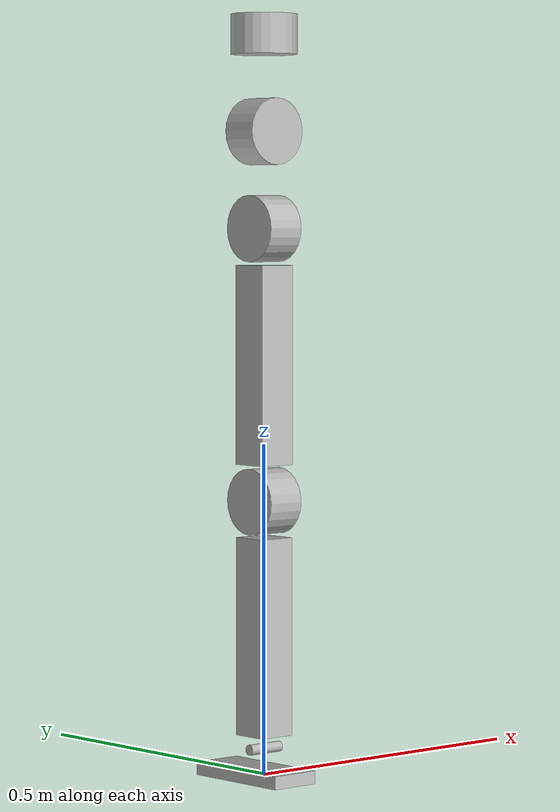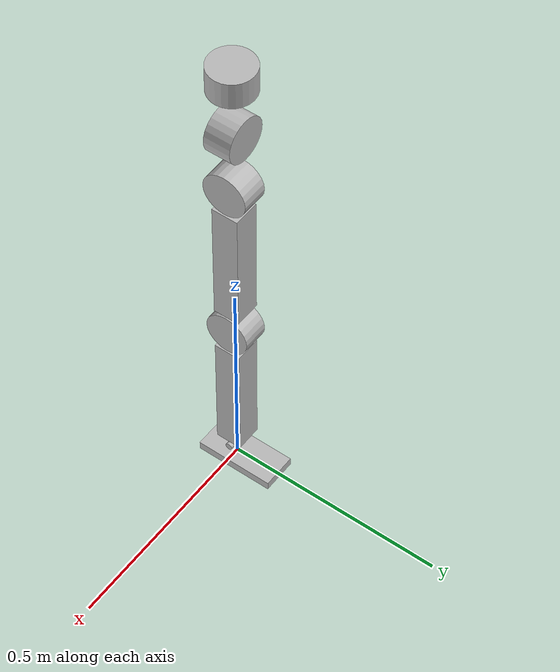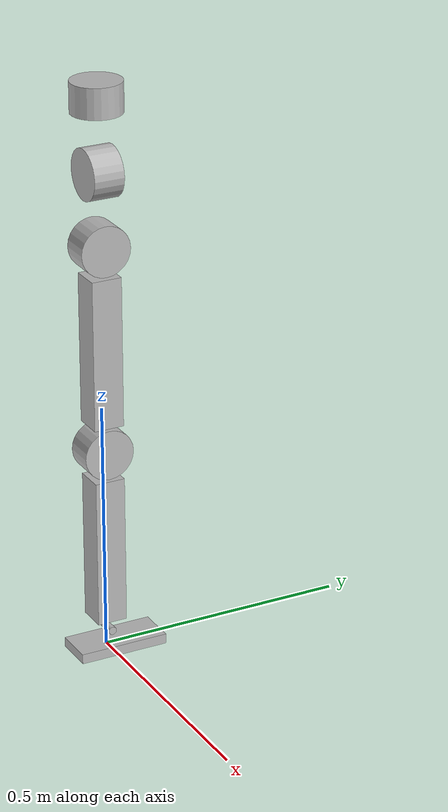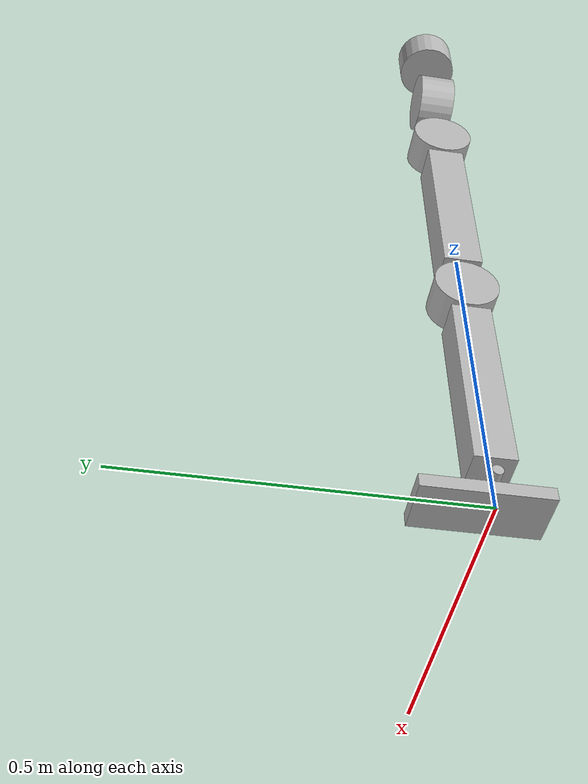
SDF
<?xml version="1.0" ?>
<sdf version="1.5">

<model name="simplified_biped">

    <link name="lower_leg">

        <self_collide>1</self_collide>

        <pose> 0 0 0.21 0 0 0 </pose>

            <inertial>
                <mass>0.5</mass>
                <inertia>
                    <ixx>0.0038</ixx>
                    <iyy>0.0038</iyy>
                    <izz>0.0003</izz>
                    <ixy>0</ixy>
                    <ixz>0</ixz>
                    <iyz>0</iyz>
                </inertia>
            </inertial>

            <collision name="base_collision">
                <geometry>
                    <box>
                        <size> 0.06 0.06 0.3 </size>
                    </box>
                </geometry>
            </collision>

            <visual name="base_visual">
                <geometry>
                    <box>
                        <size> 0.06 0.06 0.3 </size>
                    </box>
                </geometry>
            </visual>
    </link>

    <link name="knee">

        <self_collide>1</self_collide>
        <pose>0 0 0.415 0 1.570796 0</pose>

        <inertial>
            <mass>1</mass>
            <inertia>
                <ixx>0.0009</ixx>
                <iyy>0.0009</iyy>
                <izz>0.0012</izz>
                <ixy>0</ixy>
                <ixz>0</ixz>
                <iyz>0</iyz>
            </inertia>
        </inertial>

        <collision name="knee_collision">
            <geometry>
                <cylinder>
                    <radius>0.05</radius>
                    <length>0.06</length>
                </cylinder>
            </geometry>
        </collision>

        <visual name="knee_visual">
            <pose> 0 0 0 0 0 0</pose>
            <geometry>
                <cylinder>
                    <radius>0.05</radius>
                    <length>0.06</length>
                </cylinder>
            </geometry>
        </visual>
    </link>

    <link name="upper_leg">

        <self_collide>1</self_collide>
        <pose> 0 0 0.62 0 0 0 </pose>

        <inertial>
            <mass>0.5</mass>
            <inertia>
                <ixx>0.0038</ixx>
                <iyy>0.0038</iyy>
                <izz>0.0003</izz>
                <ixy>0</ixy>
                <ixz>0</ixz>
                <iyz>0</iyz>
            </inertia>
        </inertial>

        <!-- To make them perfectly stacked: 0.65m height-->

        <collision name="upper_leg_collision">
            <geometry>
                <box>
                    <size> 0.06 0.06 0.3 </size>
                </box>
            </geometry>
        </collision>

        <visual name="upper_leg_visual">
            <geometry>
                <box>
                    <size> 0.06 0.06 0.3 </size>
                </box>
            </geometry>
        </visual>
    </link>

    <link name="foot_base">

        <self_collide>1</self_collide>
        <pose>0 0.02 0 0 0 0</pose>

        <inertial>
            <mass>0.1</mass>
            <inertia>
                <ixx>0.0002</ixx>
                <iyy>0.00004</iyy>
                <izz>0.00023</izz>
                <ixy>0</ixy>
                <ixz>0</ixz>
                <iyz>0</iyz>
            </inertia>
        </inertial>

        <collision name="foot_base_collision">
            <geometry>
                <box>
                    <size> 0.08 0.18 0.02</size>
                </box>
            </geometry>
        </collision>

        <visual name="foot_base_visual">
            <geometry>
                <box>
                    <size> 0.08 0.18 0.02</size>
                </box>
            </geometry>
        </visual>
    </link>

    <link name="ankle">

        <self_collide>1</self_collide>
        <pose> 0 0 0.04 0 1.570796 0 </pose>

        <inertial>
            <mass>0.03</mass>
            <inertia>
                <ixx>0.0000048</ixx>
                <iyy>0.0000048</iyy>
                <izz>0.0000008</izz>
                <ixy>0</ixy>
                <ixz>0</ixz>
                <iyz>0</iyz>
            </inertia>
        </inertial>

        <collision name="ankle_collision">
            <geometry>
                <cylinder>
                    <radius>0.008</radius>
                    <length>0.06</length>
                </cylinder>
            </geometry>
        </collision>

        <visual name="ankle_visual">
            <geometry>
                <cylinder>
                    <radius>0.008</radius>
                    <length>0.06</length>
                </cylinder>
            </geometry>
        </visual>
    </link>

    <link name="hip_axis_1">

        <self_collide>1</self_collide>
        <pose> 0 0 0.825 0 1.570796 0 </pose>

        <inertial>
            <mass>1</mass>
            <inertia>
                <ixx>0.0009</ixx>
                <iyy>0.0009</iyy>
                <izz>0.0012</izz>
                <ixy>0</ixy>
                <ixz>0</ixz>
                <iyz>0</iyz>
            </inertia>
        </inertial>

        <collision name="hip_axis_1_collision">
            <geometry>
                <cylinder>
                    <radius>0.05</radius>
                    <length>0.06</length>
                </cylinder>
            </geometry>
        </collision>

        <visual name="hip_axis_1_visual">
            <pose> 0 0 0 0 0 0</pose>
            <geometry>
                <cylinder>
                    <radius>0.05</radius>
                    <length>0.06</length>
                </cylinder>
            </geometry>
        </visual>
    </link>

    <link name="hip_axis_2">

        <self_collide>1</self_collide>
        <pose>0 0 0.97 0 1.570796 1.570796 </pose>

        <inertial>
            <mass>1</mass>
            <inertia>
                <ixx>0.0009</ixx>
                <iyy>0.0009</iyy>
                <izz>0.0012</izz>
                <ixy>0</ixy>
                <ixz>0</ixz>
                <iyz>0</iyz>
            </inertia>
        </inertial>

        <collision name="hip_axis_2_collision">
            <geometry>
                <cylinder>
                    <radius>0.05</radius>
                    <length>0.06</length>
                </cylinder>
            </geometry>
        </collision>

        <visual name="hip_axis_2_visual">
            <pose> 0 0 0 0 0 0</pose>
            <geometry>
                <cylinder>
                    <radius>0.05</radius>
                    <length>0.06</length>
                </cylinder>
            </geometry>
        </visual>
    </link>

    <link name="hip_axis_3">

        <self_collide>1</self_collide>
        <pose> 0 0 1.115 0 0 0 </pose> <!--145mm from center of hip axis 2-->

        <inertial>
            <mass>1</mass>
            <inertia>
                <ixx>0.0009</ixx>
                <iyy>0.0009</iyy>
                <izz>0.0012</izz>
                <ixy>0</ixy>
                <ixz>0</ixz>
                <iyz>0</iyz>
            </inertia>
        </inertial>

        <collision name="hip_axis_3_collision">
            <geometry>
                <cylinder>
                    <radius>0.05</radius>
                    <length>0.06</length>
                </cylinder>
            </geometry>
        </collision>

        <visual name="hip_axis_3_visual">
            <geometry>
                <cylinder>
                    <radius>0.05</radius>
                    <length>0.06</length>
                </cylinder>
            </geometry>
        </visual>
    </link>

    <joint type="revolute" name="knee_lower_leg_joint">

        <pose> 0 0 0.205 0 0 0 </pose>

        <parent>knee</parent>

        <child>lower_leg</child>

        <axis>
            <xyz>1 0 0 </xyz>
        </axis>
    </joint>

    <joint type="revolute" name="hip_axis_1_upper_leg_joint">

        <pose> 0 0 0.205 0 0 0 </pose>

        <parent>hip_axis_1</parent>

        <child>upper_leg</child>

        <axis>
            <xyz>1 0 0 </xyz>
        </axis>
    </joint>

    <joint type="revolute" name="hip_axis_2_hip_axis_1_joint">
        <pose> -0.145 0 0 0 -1.570796 0 </pose>

        <parent>hip_axis_2</parent>
        <child>hip_axis_1</child>

        <axis>
            <xyz> 0 1 0 </xyz>
        </axis>
    </joint>

    <joint type="revolute" name="hip_axis_3_hip_axis_2_joint">
        <pose> -0.105 0 0 0 -1.5707 0 </pose>

        <parent>hip_axis_3</parent>
        <child>hip_axis_2</child>

        <axis>
            <xyz> 0 0 1 </xyz>
        </axis>
    </joint>

    <joint type="revolute" name="ankle_foot_base_joint">
        <pose> 0 -0.02 0.04 0 0 0 </pose>

        <parent>ankle</parent>
        <child>foot_base</child>

        <axis>
            <xyz>1 0 0 </xyz>
        </axis>
    </joint>

    <joint type="fixed" name="knee_upper_leg_joint">
        <pose>0 0 0 0 0 0 </pose>
        <parent>upper_leg</parent>
        <child>knee</child>
    </joint>

    <joint type="fixed" name="ankle_lower_leg_joint">
        <pose> 0 0 0 0 0 0 </pose>
        <parent>lower_leg</parent>
        <child>ankle</child>
    </joint>

</model>
</sdf>
